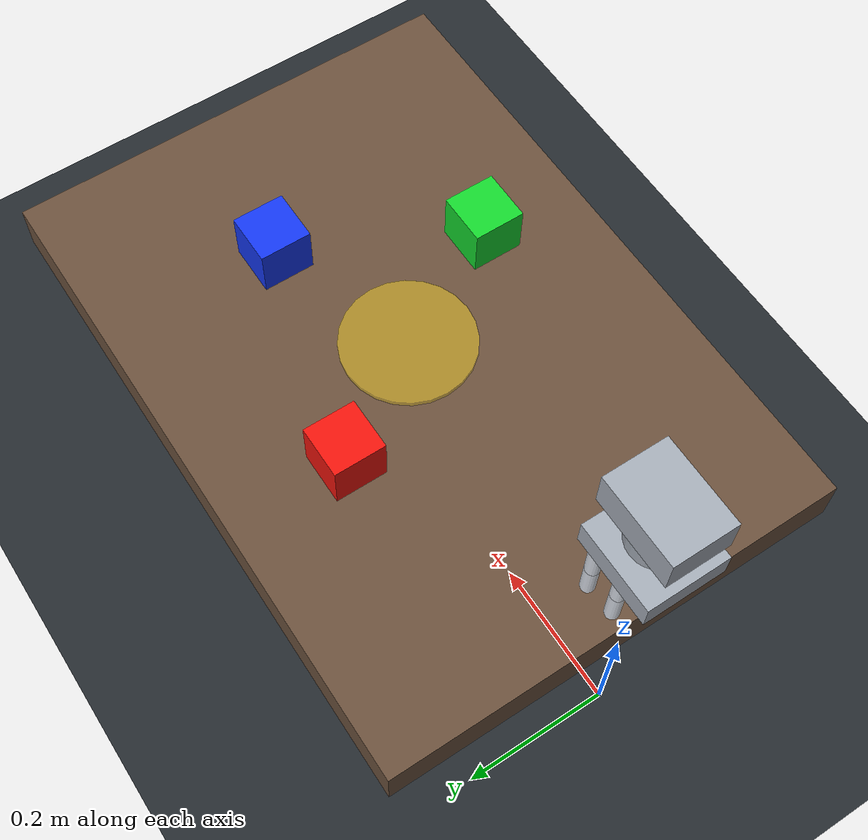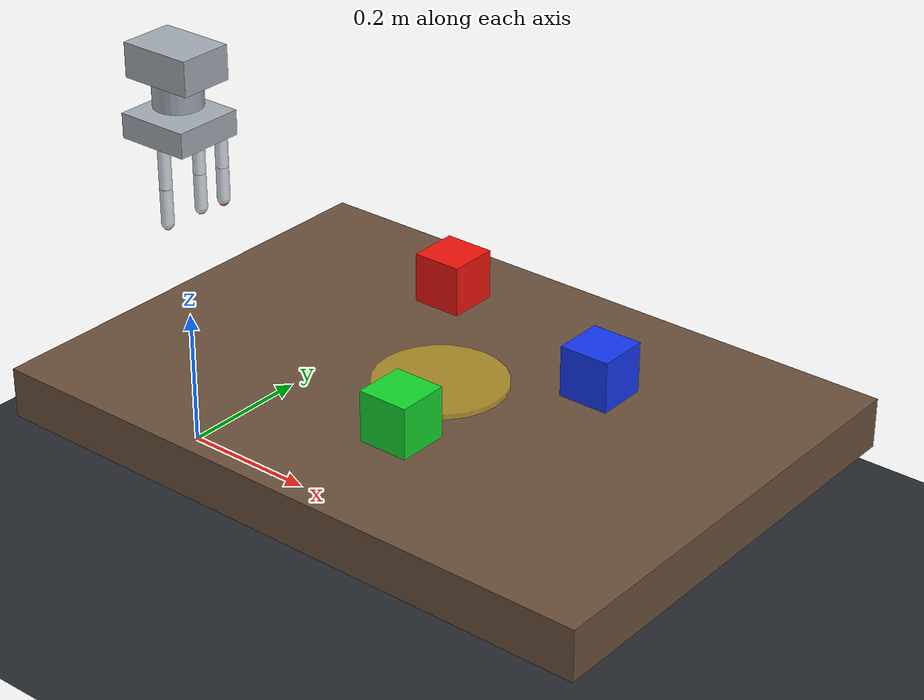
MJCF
<mujoco model="precision_assembler">
  <compiler angle="radian" autolimits="true"/>
  <option timestep="0.002" gravity="0 0 -9.81" integrator="RK4"/>
  <size njmax="1000" nconmax="200"/>

  <visual>
    <global azimuth="135" elevation="-25" offwidth="960" offheight="540"/>
    <headlight diffuse="0.55 0.55 0.55" ambient="0.25 0.25 0.25" specular="0.4 0.4 0.4"/>
    <rgba haze="0.08 0.12 0.18 1"/>
  </visual>

  <asset>
    <texture type="skybox" builtin="gradient" rgb1="0.08 0.12 0.18" rgb2="0.01 0.015 0.025" width="512" height="3072"/>
    <texture type="2d" name="floor_tex" builtin="checker" rgb1="0.12 0.14 0.16" rgb2="0.18 0.20 0.22" width="256" height="256"/>
    <material name="floor_mat" texture="floor_tex" texrepeat="6 6" texuniform="true" reflectance="0.15"/>
    <material name="table_mat" rgba="0.42 0.32 0.24 1"/>
    <material name="metal" rgba="0.65 0.68 0.72 1" specular="0.5" shininess="0.35"/>
    <material name="finger_mat" rgba="0.86 0.88 0.92 1"/>
    <material name="pad_mat" rgba="0.08 0.08 0.09 1"/>
    <material name="red" rgba="0.95 0.08 0.05 1"/>
    <material name="green" rgba="0.08 0.85 0.18 1"/>
    <material name="blue" rgba="0.08 0.22 0.95 1"/>
    <material name="target" rgba="1 0.85 0.1 0.45"/>
  </asset>

  <default>
    <default class="rail">
      <joint damping="8" armature="0.02"/>
      <position kp="650" kv="65" ctrlrange="-1 1"/>
    </default>
    <default class="finger">
      <joint damping="0.12" armature="0.003" frictionloss="0.015"/>
      <geom type="capsule" size="0.009 0.035" material="finger_mat" contype="1" conaffinity="1" condim="4" friction="1.3 0.01 0.002"/>
      <position kp="25" kv="2.5" ctrlrange="-1.2 1.2"/>
    </default>
    <default class="block">
      <geom type="box" size="0.035 0.035 0.035" mass="0.08" contype="1" conaffinity="1" condim="4" friction="1.6 0.02 0.004"/>
    </default>
  </default>

  <worldbody>
    <camera name="demo" pos="1.15 -1.05 0.82" xyaxes="0.68 0.73 0 -0.38 0.35 0.86"/>
    <light name="key" pos="0.2 -0.8 1.5" diffuse="0.8 0.8 0.78"/>
    <geom name="floor" type="plane" size="1.5 1.5 0.05" material="floor_mat"/>
    <geom name="table" type="box" pos="0.45 0 0.22" size="0.45 0.32 0.035" material="table_mat"/>
    <geom name="target_pad" type="cylinder" pos="0.45 0 0.258" size="0.09 0.004" material="target"/>

    <body name="block_red" pos="0.34 0.16 0.31">
      <freejoint name="red_free"/>
      <geom name="red_geom" class="block" material="red"/>
    </body>
    <body name="block_green" pos="0.52 -0.16 0.31">
      <freejoint name="green_free"/>
      <geom name="green_geom" class="block" material="green"/>
    </body>
    <body name="block_blue" pos="0.64 0.08 0.31">
      <freejoint name="blue_free"/>
      <geom name="blue_geom" class="block" material="blue"/>
    </body>

    <body name="gantry" pos="0 0 0.58">
      <joint name="slide_x" type="slide" axis="1 0 0" range="0.12 0.75" class="rail"/>
      <joint name="slide_y" type="slide" axis="0 1 0" range="-0.24 0.24" class="rail"/>
      <joint name="slide_z" type="slide" axis="0 0 1" range="-0.24 0.16" class="rail"/>
      <geom type="box" size="0.055 0.04 0.025" material="metal" contype="0" conaffinity="0"/>
      <body name="wrist" pos="0 0 -0.045">
        <joint name="wrist_yaw" type="hinge" axis="0 0 1" range="-1.57 1.57" damping="0.4"/>
        <geom type="cylinder" size="0.035 0.018" material="metal"/>
        <body name="palm" pos="0 0 -0.045">
          <geom type="box" size="0.055 0.052 0.018" material="metal" condim="4" friction="1 0.01 0.002"/>
          <site name="palm_center" pos="0 0 -0.025" size="0.008" rgba="1 1 0 1"/>

          <body name="thumb_1" pos="0.034 0.042 -0.012" euler="0 0 -0.45">
            <joint name="thumb_base" type="hinge" axis="0 1 0" range="-0.4 1.1" class="finger"/>
            <geom class="finger" fromto="0 0 0 0 0 -0.055"/>
            <body name="thumb_2" pos="0 0 -0.055">
              <joint name="thumb_tip" type="hinge" axis="0 1 0" range="0 1.45" class="finger"/>
              <geom class="finger" fromto="0 0 0 0 0 -0.048"/>
              <site name="thumb_tip_site" pos="0 0 -0.052" size="0.007" rgba="1 0.4 0.4 1"/>
            </body>
          </body>

          <body name="index_1" pos="0 0.032 -0.018">
            <joint name="index_base" type="hinge" axis="1 0 0" range="-0.2 1.25" class="finger"/>
            <geom class="finger" fromto="0 0 0 0 0 -0.065"/>
            <body name="index_2" pos="0 0 -0.065">
              <joint name="index_tip" type="hinge" axis="1 0 0" range="0 1.55" class="finger"/>
              <geom class="finger" fromto="0 0 0 0 0 -0.052"/>
              <site name="index_tip_site" pos="0 0 -0.055" size="0.007" rgba="1 0.4 0.4 1"/>
            </body>
          </body>

          <body name="middle_1" pos="0 -0.032 -0.018">
            <joint name="middle_base" type="hinge" axis="-1 0 0" range="-0.2 1.25" class="finger"/>
            <geom class="finger" fromto="0 0 0 0 0 -0.065"/>
            <body name="middle_2" pos="0 0 -0.065">
              <joint name="middle_tip" type="hinge" axis="-1 0 0" range="0 1.55" class="finger"/>
              <geom class="finger" fromto="0 0 0 0 0 -0.052"/>
              <site name="middle_tip_site" pos="0 0 -0.055" size="0.007" rgba="1 0.4 0.4 1"/>
            </body>
          </body>
        </body>
      </body>
    </body>
  </worldbody>

  <actuator>
    <position name="x" joint="slide_x" class="rail" ctrlrange="0.12 0.75"/>
    <position name="y" joint="slide_y" class="rail" ctrlrange="-0.24 0.24"/>
    <position name="z" joint="slide_z" class="rail" ctrlrange="-0.24 0.16"/>
    <position name="yaw" joint="wrist_yaw" kp="35" kv="4" ctrlrange="-1.57 1.57"/>
    <position name="thumb_base" joint="thumb_base" class="finger"/>
    <position name="thumb_tip" joint="thumb_tip" class="finger"/>
    <position name="index_base" joint="index_base" class="finger"/>
    <position name="index_tip" joint="index_tip" class="finger"/>
    <position name="middle_base" joint="middle_base" class="finger"/>
    <position name="middle_tip" joint="middle_tip" class="finger"/>
  </actuator>

  <sensor>
    <jointpos name="x_pos" joint="slide_x"/>
    <jointpos name="y_pos" joint="slide_y"/>
    <jointpos name="z_pos" joint="slide_z"/>
    <framepos name="palm_xyz" objtype="site" objname="palm_center"/>
    <framepos name="thumb_xyz" objtype="site" objname="thumb_tip_site"/>
    <framepos name="index_xyz" objtype="site" objname="index_tip_site"/>
    <framepos name="middle_xyz" objtype="site" objname="middle_tip_site"/>
  </sensor>
</mujoco>
